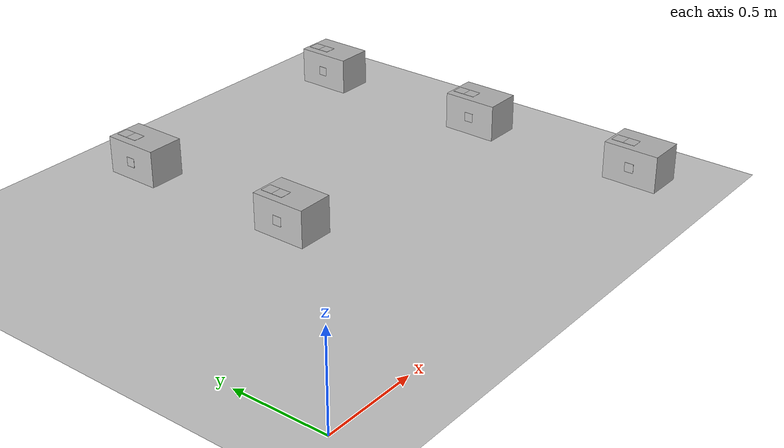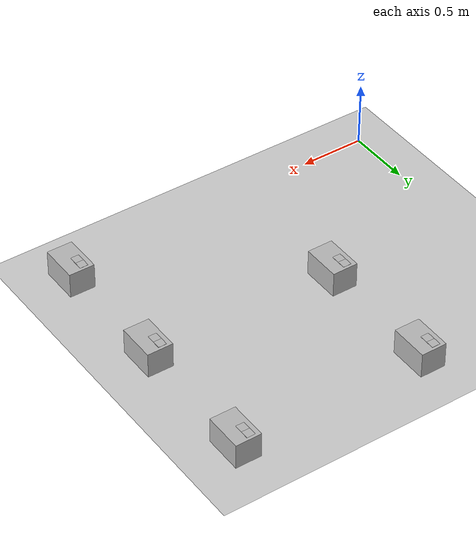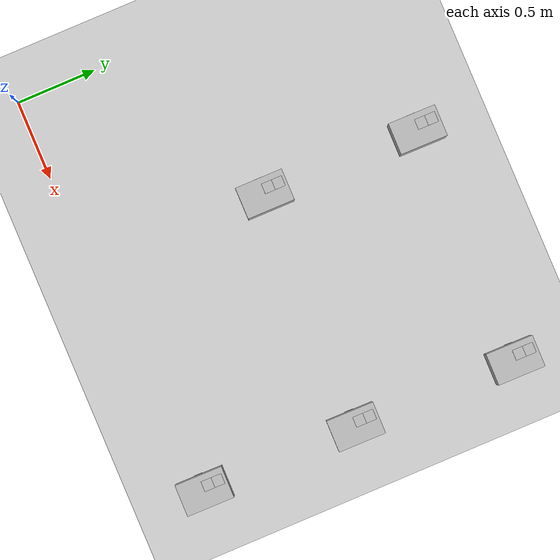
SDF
<sdf version="1.7">
 <world name="default">
  <light name="sun" type="directional">
   <pose>0 0 10 0 -0 0</pose>
   <diffuse>0.8 0.8 0.8 1</diffuse>
   <specular>0.1 0.1 0.1 1</specular>
   <attenuation>
    <range>1000</range>
    <constant>0.9</constant>
    <linear>0.01</linear>
    <quadratic>0.001</quadratic>
   </attenuation>
   <direction>-0.5 0.5 -1</direction>
   <spot><inner_angle>0</inner_angle><outer_angle>0</outer_angle><falloff>0</falloff></spot>
  </light>
  <model name="ground_plane">
   <static>1</static>
   <link name="link">
    <collision name="collision">
     <geometry><plane><normal>0 0 1</normal><size>100 100</size></plane></geometry>
     <surface><friction><ode><mu>100</mu><mu2>50</mu2></ode></friction></surface>
    </collision>
    <visual name="visual">
     <cast_shadows>0</cast_shadows>
     <geometry><plane><normal>0 0 1</normal><size>100 100</size></plane></geometry>
     <material>
      <script><uri>file://media/materials/scripts/gazebo.material</uri><name>Gazebo/Grey</name></script>
     </material>
    </visual>
   </link>
  </model>
  <gravity>0 0 -9.8</gravity>
  <magnetic_field>6e-06 2.3e-05 -4.2e-05</magnetic_field>
  <atmosphere type="adiabatic"/>
  <physics name="default_physics" default="0" type="ode">
   <max_step_size>0.001</max_step_size>
   <real_time_factor>1</real_time_factor>
   <real_time_update_rate>1000</real_time_update_rate>
  </physics>
  <scene><ambient>0.4 0.4 0.4 1</ambient><background>0.7 0.7 0.7 1</background><shadows>1</shadows></scene>
  <spherical_coordinates>
   <surface_model>EARTH_WGS84</surface_model>
   <latitude_deg>0</latitude_deg>
   <longitude_deg>0</longitude_deg>
   <elevation>0</elevation>
   <heading_deg>0</heading_deg>
  </spherical_coordinates>
  <model name="rei_block_stage_0">
   <static>0</static>
   <link name="block_stage_link">
    <inertial>
     <mass>10</mass>
     <inertia><ixx>1</ixx><ixy>0</ixy><ixz>0</ixz><iyy>1</iyy><iyz>0</iyz><izz>1</izz></inertia>
    </inertial>
    <collision name="collision"><geometry><box><size>0.2 0.3 0.2</size></box></geometry></collision>
    <visual name="visual_1">
     <cast_shadows>0</cast_shadows>
     <geometry><box><size>0.2 0.3 0.2</size></box></geometry>
    </visual>
    <visual name="visual_2">
     <pose>0.105 0 0 0 -1.5707 0</pose>
     <cast_shadows>0</cast_shadows>
     <geometry><box><size>0.05 0.05 0.001</size></box></geometry>
     <material>
      <script>
       <uri>model://rei_block_stage/materials/scripts</uri>
       <uri>model://rei_block_stage/materials/textures</uri>
       <name>reinovo/rei_block_stage</name>
      </script>
     </material>
    </visual>
    <visual name="visual_3">
     <pose>0.03 0.1 -0.105 0 -0 0</pose>
     <cast_shadows>0</cast_shadows>
     <geometry><box><size>0.065 0.065 0.001</size></box></geometry>
     <material>
      <script>
       <uri>model://rei_block_stage/materials_goal/scripts</uri>
       <uri>model://rei_block_stage/materials_goal/textures</uri>
       <name>reinovo/rei_goal</name>
      </script>
     </material>
    </visual>
    <visual name="visual_4">
     <pose>0.03 0.035 -0.105 0 -0 0</pose>
     <cast_shadows>0</cast_shadows>
     <geometry><box><size>0.065 0.065 0.001</size></box></geometry>
     <material>
      <script>
       <uri>model://rei_block_stage/materials_goal/scripts</uri>
       <uri>model://rei_block_stage/materials_goal/textures</uri>
       <name>reinovo/rei_goal</name>
      </script>
     </material>
    </visual>
   </link>
   <pose>1.10343 2.14895 0.1 -3.14159 -0 3.13473</pose>
  </model>
  <model name="rei_block_stage_0_clone">
   <static>0</static>
   <link name="block_stage_link">
    <inertial>
     <mass>10</mass>
     <inertia><ixx>1</ixx><ixy>0</ixy><ixz>0</ixz><iyy>1</iyy><iyz>0</iyz><izz>1</izz></inertia>
    </inertial>
    <collision name="collision"><geometry><box><size>0.2 0.3 0.2</size></box></geometry></collision>
    <visual name="visual_1">
     <cast_shadows>0</cast_shadows>
     <geometry><box><size>0.2 0.3 0.2</size></box></geometry>
    </visual>
    <visual name="visual_2">
     <pose>0.105 0 0 0 -1.5707 0</pose>
     <cast_shadows>0</cast_shadows>
     <geometry><box><size>0.05 0.05 0.001</size></box></geometry>
     <material>
      <script>
       <uri>model://rei_block_stage/materials/scripts</uri>
       <uri>model://rei_block_stage/materials/textures</uri>
       <name>reinovo/rei_block_stage</name>
      </script>
     </material>
    </visual>
    <visual name="visual_3">
     <pose>0.03 0.1 -0.105 0 -0 0</pose>
     <cast_shadows>0</cast_shadows>
     <geometry><box><size>0.065 0.065 0.001</size></box></geometry>
     <material>
      <script>
       <uri>model://rei_block_stage/materials_goal/scripts</uri>
       <uri>model://rei_block_stage/materials_goal/textures</uri>
       <name>reinovo/rei_goal</name>
      </script>
     </material>
    </visual>
    <visual name="visual_4">
     <pose>0.03 0.035 -0.105 0 -0 0</pose>
     <cast_shadows>0</cast_shadows>
     <geometry><box><size>0.065 0.065 0.001</size></box></geometry>
     <material>
      <script>
       <uri>model://rei_block_stage/materials_goal/scripts</uri>
       <uri>model://rei_block_stage/materials_goal/textures</uri>
       <name>reinovo/rei_goal</name>
      </script>
     </material>
    </visual>
   </link>
   <pose>1.10125 1.15624 0.1 -3.14159 0 3.14074</pose>
  </model>
  <model name="rei_block_stage_0_clone_0">
   <static>0</static>
   <link name="block_stage_link">
    <inertial>
     <mass>10</mass>
     <inertia><ixx>1</ixx><ixy>0</ixy><ixz>0</ixz><iyy>1</iyy><iyz>0</iyz><izz>1</izz></inertia>
    </inertial>
    <collision name="collision"><geometry><box><size>0.2 0.3 0.2</size></box></geometry></collision>
    <visual name="visual_1">
     <cast_shadows>0</cast_shadows>
     <geometry><box><size>0.2 0.3 0.2</size></box></geometry>
    </visual>
    <visual name="visual_2">
     <pose>0.105 0 0 0 -1.5707 0</pose>
     <cast_shadows>0</cast_shadows>
     <geometry><box><size>0.05 0.05 0.001</size></box></geometry>
     <material>
      <script>
       <uri>model://rei_block_stage/materials/scripts</uri>
       <uri>model://rei_block_stage/materials/textures</uri>
       <name>reinovo/rei_block_stage</name>
      </script>
     </material>
    </visual>
    <visual name="visual_3">
     <pose>0.03 0.1 -0.105 0 -0 0</pose>
     <cast_shadows>0</cast_shadows>
     <geometry><box><size>0.065 0.065 0.001</size></box></geometry>
     <material>
      <script>
       <uri>model://rei_block_stage/materials_goal/scripts</uri>
       <uri>model://rei_block_stage/materials_goal/textures</uri>
       <name>reinovo/rei_goal</name>
      </script>
     </material>
    </visual>
    <visual name="visual_4">
     <pose>0.03 0.035 -0.105 0 -0 0</pose>
     <cast_shadows>0</cast_shadows>
     <geometry><box><size>0.065 0.065 0.001</size></box></geometry>
     <material>
      <script>
       <uri>model://rei_block_stage/materials_goal/scripts</uri>
       <uri>model://rei_block_stage/materials_goal/textures</uri>
       <name>reinovo/rei_goal</name>
      </script>
     </material>
    </visual>
   </link>
   <pose>2.59724 0.132309 0.099998 -3.14158 -8e-06 3.13474</pose>
  </model>
  <model name="rei_block_stage_0_clone_1">
   <static>0</static>
   <link name="block_stage_link">
    <inertial>
     <mass>10</mass>
     <inertia><ixx>1</ixx><ixy>0</ixy><ixz>0</ixz><iyy>1</iyy><iyz>0</iyz><izz>1</izz></inertia>
    </inertial>
    <collision name="collision"><geometry><box><size>0.2 0.3 0.2</size></box></geometry></collision>
    <visual name="visual_1">
     <cast_shadows>0</cast_shadows>
     <geometry><box><size>0.2 0.3 0.2</size></box></geometry>
    </visual>
    <visual name="visual_2">
     <pose>0.105 0 0 0 -1.5707 0</pose>
     <cast_shadows>0</cast_shadows>
     <geometry><box><size>0.05 0.05 0.001</size></box></geometry>
     <material>
      <script>
       <uri>model://rei_block_stage/materials/scripts</uri>
       <uri>model://rei_block_stage/materials/textures</uri>
       <name>reinovo/rei_block_stage</name>
      </script>
     </material>
    </visual>
    <visual name="visual_3">
     <pose>0.03 0.1 -0.105 0 -0 0</pose>
     <cast_shadows>0</cast_shadows>
     <geometry><box><size>0.065 0.065 0.001</size></box></geometry>
     <material>
      <script>
       <uri>model://rei_block_stage/materials_goal/scripts</uri>
       <uri>model://rei_block_stage/materials_goal/textures</uri>
       <name>reinovo/rei_goal</name>
      </script>
     </material>
    </visual>
    <visual name="visual_4">
     <pose>0.03 0.035 -0.105 0 -0 0</pose>
     <cast_shadows>0</cast_shadows>
     <geometry><box><size>0.065 0.065 0.001</size></box></geometry>
     <material>
      <script>
       <uri>model://rei_block_stage/materials_goal/scripts</uri>
       <uri>model://rei_block_stage/materials_goal/textures</uri>
       <name>reinovo/rei_goal</name>
      </script>
     </material>
    </visual>
   </link>
   <pose>2.59638 1.1146 0.1 -3.14159 3e-06 3.13473</pose>
  </model>
  <model name="rei_block_stage_0_clone_2">
   <static>0</static>
   <link name="block_stage_link">
    <inertial>
     <mass>10</mass>
     <inertia><ixx>1</ixx><ixy>0</ixy><ixz>0</ixz><iyy>1</iyy><iyz>0</iyz><izz>1</izz></inertia>
    </inertial>
    <collision name="collision"><geometry><box><size>0.2 0.3 0.2</size></box></geometry></collision>
    <visual name="visual_1">
     <cast_shadows>0</cast_shadows>
     <geometry><box><size>0.2 0.3 0.2</size></box></geometry>
    </visual>
    <visual name="visual_2">
     <pose>0.105 0 0 0 -1.5707 0</pose>
     <cast_shadows>0</cast_shadows>
     <geometry><box><size>0.05 0.05 0.001</size></box></geometry>
     <material>
      <script>
       <uri>model://rei_block_stage/materials/scripts</uri>
       <uri>model://rei_block_stage/materials/textures</uri>
       <name>reinovo/rei_block_stage</name>
      </script>
     </material>
    </visual>
    <visual name="visual_3">
     <pose>0.03 0.1 -0.105 0 -0 0</pose>
     <cast_shadows>0</cast_shadows>
     <geometry><box><size>0.065 0.065 0.001</size></box></geometry>
     <material>
      <script>
       <uri>model://rei_block_stage/materials_goal/scripts</uri>
       <uri>model://rei_block_stage/materials_goal/textures</uri>
       <name>reinovo/rei_goal</name>
      </script>
     </material>
    </visual>
    <visual name="visual_4">
     <pose>0.03 0.035 -0.105 0 -0 0</pose>
     <cast_shadows>0</cast_shadows>
     <geometry><box><size>0.065 0.065 0.001</size></box></geometry>
     <material>
      <script>
       <uri>model://rei_block_stage/materials_goal/scripts</uri>
       <uri>model://rei_block_stage/materials_goal/textures</uri>
       <name>reinovo/rei_goal</name>
      </script>
     </material>
    </visual>
   </link>
   <pose>2.60025 2.14726 0.099998 -3.14158 -6e-06 3.13473</pose>
  </model>
 </world>
</sdf>
